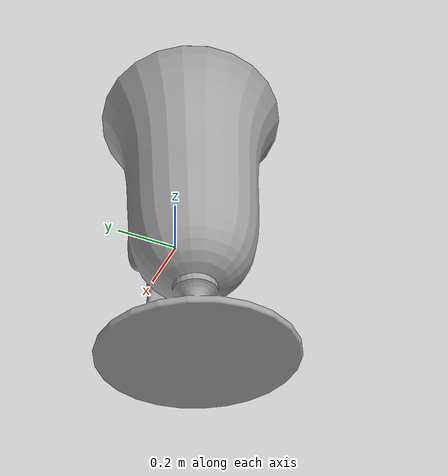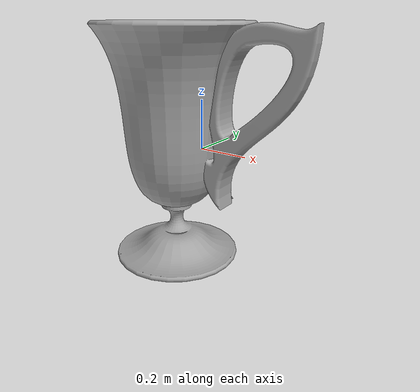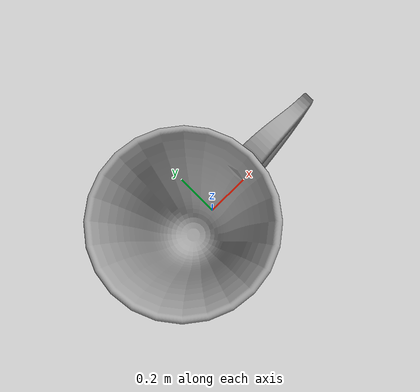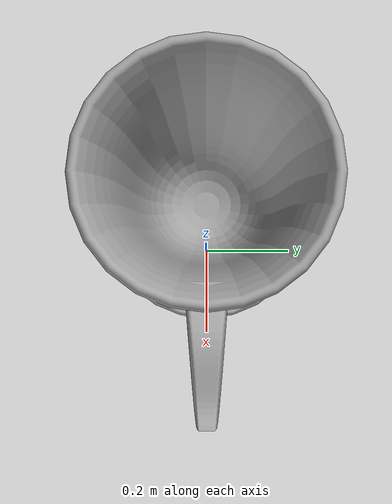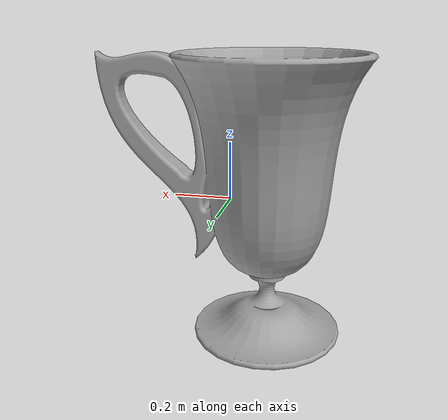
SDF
<?xml version="1.0" ?>
<sdf version="1.5">
  <model name='cup5'>
    <pose>0 0 0 0 0 0</pose>
    <static>1</static>
    <link name='body'>
      <collision name="cup5-coll">
        <pose>0 0 -0.5 0 0 0</pose>
        <geometry>
          <mesh>
            <uri>model://cup5/meshes/cup5.dae</uri>
          </mesh>
        </geometry>
      </collision>
      <visual name='cup5'>
        <cast_shadows>1</cast_shadows>
        <pose>0 0 -0.5 0 0 0</pose>
        <geometry>
          <mesh>
            <uri>model://cup5/meshes/cup5.dae</uri>
          </mesh>
        </geometry>
      </visual>
      <velocity_decay>
        <linear>0</linear>
        <angular>0</angular>
      </velocity_decay>
      <self_collide>0</self_collide>
      <kinematic>0</kinematic>
      <gravity>1</gravity>
    </link>
  </model>

</sdf>
